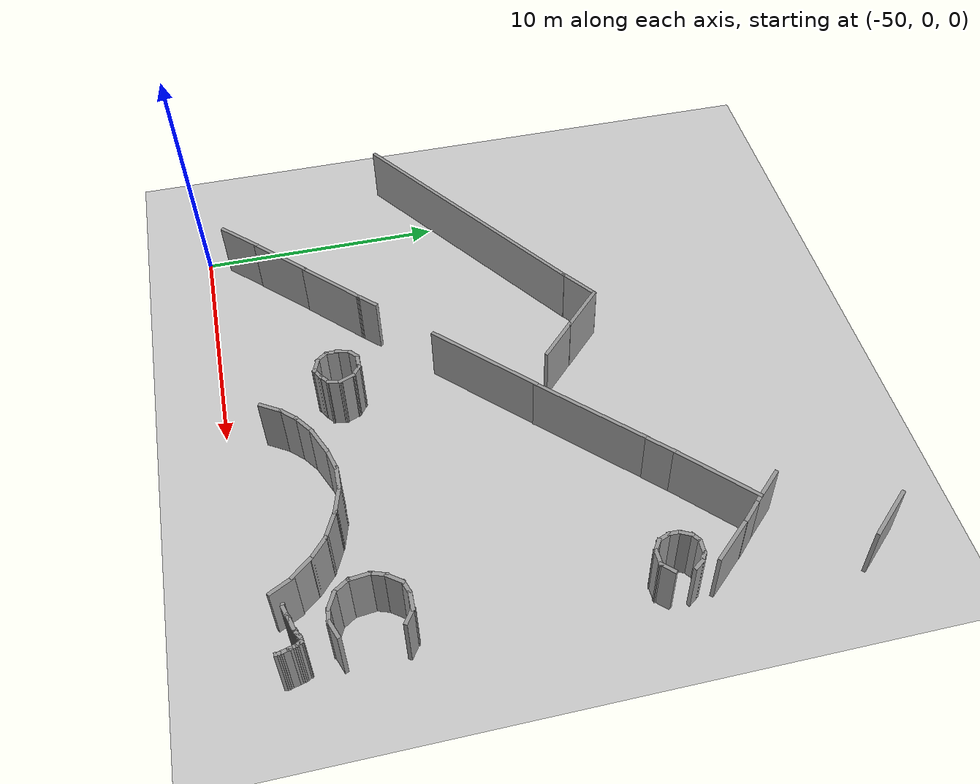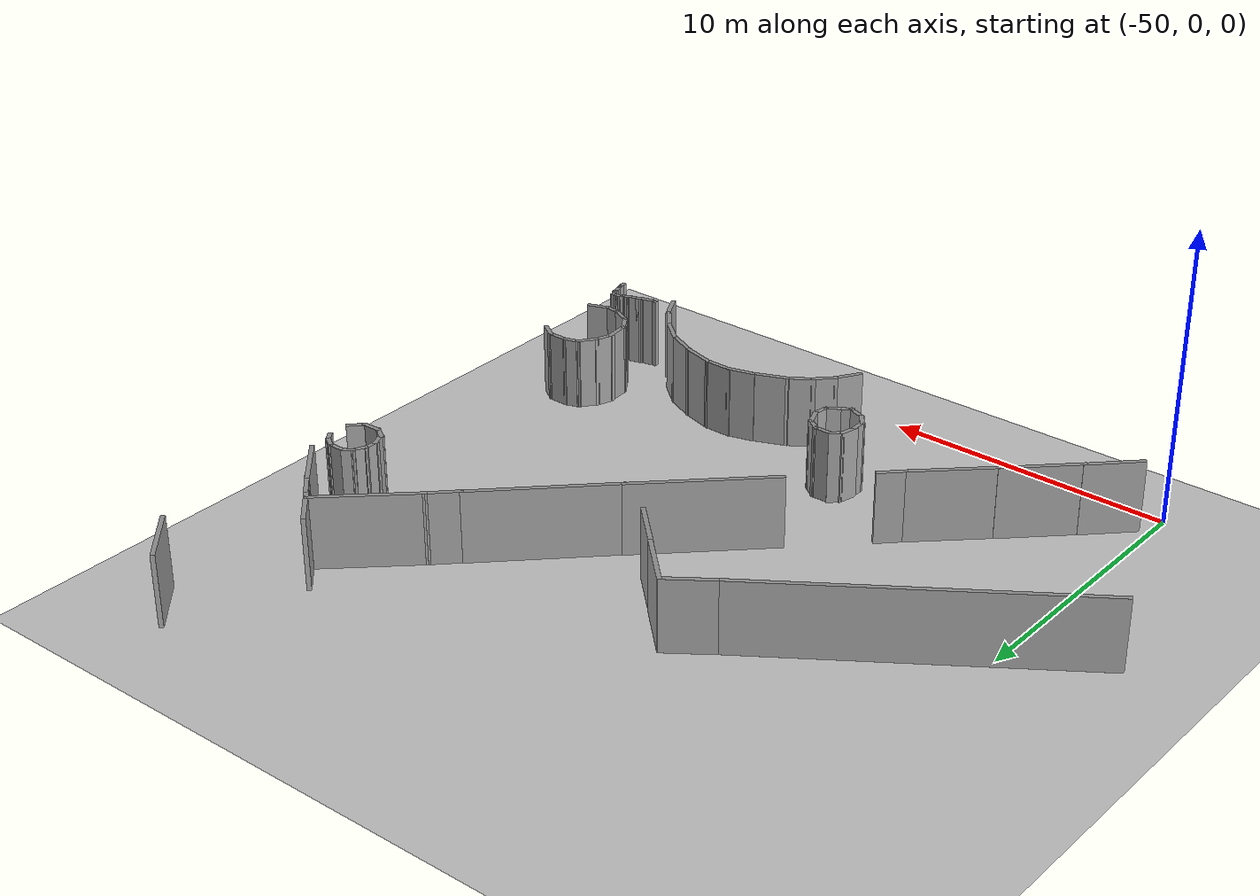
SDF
<sdf version="1.6">
 <world name="default">
  <model name="ground_plane">
   <static>1</static>
   <link name="link">
    <collision name="collision">
     <geometry><plane><normal>0 0 1</normal><size>100 100</size></plane></geometry>
     <surface><friction><ode><mu>100</mu><mu2>50</mu2></ode></friction></surface>
    </collision>
    <visual name="visual">
     <cast_shadows>0</cast_shadows>
     <geometry><plane><normal>0 0 1</normal><size>100 100</size></plane></geometry>
     <material>
      <script><uri>file://media/materials/scripts/gazebo.material</uri><name>Gazebo/Grey</name></script>
     </material>
    </visual>
   </link>
  </model>
  <model name="scene">
   <pose>1.8013 -1.70593 0 0 -0 0</pose>
   <link name="Wall_1058">
    <collision name="Wall_1058_Collision">
     <geometry><box><size>0.609681 0.15 2.5</size></box></geometry>
     <pose>0 0 1.25 0 -0 0</pose>
    </collision>
    <visual name="Wall_1058_Visual">
     <pose>0 0 1.25 0 -0 0</pose>
     <geometry><box><size>0.609681 0.15 2.5</size></box></geometry>
     <material>
      <script><uri>file://media/materials/scripts/gazebo.material</uri><name>Gazebo/Grey</name></script>
      <ambient>1 1 1 1</ambient>
     </material>
    </visual>
    <pose>-31.3527 17.7342 0 0 0 -0.02377</pose>
   </link>
   <link name="Wall_1059">
    <collision name="Wall_1059_Collision">
     <geometry><box><size>0.499764 0.15 2.5</size></box></geometry>
     <pose>0 0 1.25 0 -0 0</pose>
    </collision>
    <visual name="Wall_1059_Visual">
     <pose>0 0 1.25 0 -0 0</pose>
     <geometry><box><size>0.499764 0.15 2.5</size></box></geometry>
     <material>
      <script><uri>file://media/materials/scripts/gazebo.material</uri><name>Gazebo/Grey</name></script>
      <ambient>1 1 1 1</ambient>
     </material>
    </visual>
    <pose>-30.9759 17.6453 0 0 0 -0.570304</pose>
   </link>
   <link name="Wall_1060">
    <collision name="Wall_1060_Collision">
     <geometry><box><size>0.513496 0.15 2.5</size></box></geometry>
     <pose>0 0 1.25 0 -0 0</pose>
    </collision>
    <visual name="Wall_1060_Visual">
     <pose>0 0 1.25 0 -0 0</pose>
     <geometry><box><size>0.513496 0.15 2.5</size></box></geometry>
     <material>
      <script><uri>file://media/materials/scripts/gazebo.material</uri><name>Gazebo/Grey</name></script>
      <ambient>1 1 1 1</ambient>
     </material>
    </visual>
    <pose>-30.7109 17.4148 0 0 0 -0.942184</pose>
   </link>
   <link name="Wall_1063">
    <collision name="Wall_1063_Collision">
     <geometry><box><size>0.690792 0.15 2.5</size></box></geometry>
     <pose>0 0 1.25 0 -0 0</pose>
    </collision>
    <visual name="Wall_1063_Visual">
     <pose>0 0 1.25 0 -0 0</pose>
     <geometry><box><size>0.690792 0.15 2.5</size></box></geometry>
     <material>
      <script><uri>file://media/materials/scripts/gazebo.material</uri><name>Gazebo/Grey</name></script>
      <ambient>1 1 1 1</ambient>
     </material>
    </visual>
    <pose>-30.8373 16.323 0 0 0 -2.35098</pose>
   </link>
   <link name="Wall_1064">
    <collision name="Wall_1064_Collision">
     <geometry><box><size>0.706181 0.15 2.5</size></box></geometry>
     <pose>0 0 1.25 0 -0 0</pose>
    </collision>
    <visual name="Wall_1064_Visual">
     <pose>0 0 1.25 0 -0 0</pose>
     <geometry><box><size>0.706181 0.15 2.5</size></box></geometry>
     <material>
      <script><uri>file://media/materials/scripts/gazebo.material</uri><name>Gazebo/Grey</name></script>
      <ambient>1 1 1 1</ambient>
     </material>
    </visual>
    <pose>-31.2946 16.1238 0 0 0 -3.11637</pose>
   </link>
   <link name="Wall_1065">
    <collision name="Wall_1065_Collision">
     <geometry><box><size>0.614202 0.15 2.5</size></box></geometry>
     <pose>0 0 1.25 0 -0 0</pose>
    </collision>
    <visual name="Wall_1065_Visual">
     <pose>0 0 1.25 0 -0 0</pose>
     <geometry><box><size>0.614202 0.15 2.5</size></box></geometry>
     <material>
      <script><uri>file://media/materials/scripts/gazebo.material</uri><name>Gazebo/Grey</name></script>
      <ambient>1 1 1 1</ambient>
     </material>
    </visual>
    <pose>-31.7678 16.2314 0 0 -0 2.57012</pose>
   </link>
   <link name="Wall_1066">
    <collision name="Wall_1066_Collision">
     <geometry><box><size>0.590807 0.15 2.5</size></box></geometry>
     <pose>0 0 1.25 0 -0 0</pose>
    </collision>
    <visual name="Wall_1066_Visual">
     <pose>0 0 1.25 0 -0 0</pose>
     <geometry><box><size>0.590807 0.15 2.5</size></box></geometry>
     <material>
      <script><uri>file://media/materials/scripts/gazebo.material</uri><name>Gazebo/Grey</name></script>
      <ambient>1 1 1 1</ambient>
     </material>
    </visual>
    <pose>-32.0354 16.561 0 0 -0 1.95851</pose>
   </link>
   <link name="Wall_1067">
    <collision name="Wall_1067_Collision">
     <geometry><box><size>0.570884 0.15 2.5</size></box></geometry>
     <pose>0 0 1.25 0 -0 0</pose>
    </collision>
    <visual name="Wall_1067_Visual">
     <pose>0 0 1.25 0 -0 0</pose>
     <geometry><box><size>0.570884 0.15 2.5</size></box></geometry>
     <material>
      <script><uri>file://media/materials/scripts/gazebo.material</uri><name>Gazebo/Grey</name></script>
      <ambient>1 1 1 1</ambient>
     </material>
    </visual>
    <pose>-32.1184 16.9748 0 0 -0 1.51706</pose>
   </link>
   <link name="Wall_1068">
    <collision name="Wall_1068_Collision">
     <geometry><box><size>0.555832 0.15 2.5</size></box></geometry>
     <pose>0 0 1.25 0 -0 0</pose>
    </collision>
    <visual name="Wall_1068_Visual">
     <pose>0 0 1.25 0 -0 0</pose>
     <geometry><box><size>0.555832 0.15 2.5</size></box></geometry>
     <material>
      <script><uri>file://media/materials/scripts/gazebo.material</uri><name>Gazebo/Grey</name></script>
      <ambient>1 1 1 1</ambient>
     </material>
    </visual>
    <pose>-32.0034 17.3651 0 0 -0 1.09587</pose>
   </link>
   <link name="Wall_1069">
    <collision name="Wall_1069_Collision">
     <geometry><box><size>0.458441 0.15 2.5</size></box></geometry>
     <pose>0 0 1.25 0 -0 0</pose>
    </collision>
    <visual name="Wall_1069_Visual">
     <pose>0 0 1.25 0 -0 0</pose>
     <geometry><box><size>0.458441 0.15 2.5</size></box></geometry>
     <material>
      <script><uri>file://media/materials/scripts/gazebo.material</uri><name>Gazebo/Grey</name></script>
      <ambient>1 1 1 1</ambient>
     </material>
    </visual>
    <pose>-31.7948 17.6333 0 0 -0 0.605884</pose>
   </link>
   <link name="Wall_1077">
    <collision name="Wall_1077_Collision">
     <geometry><box><size>0.805347 0.15 2.5</size></box></geometry>
     <pose>0 0 1.25 0 -0 0</pose>
    </collision>
    <visual name="Wall_1077_Visual">
     <pose>0 0 1.25 0 -0 0</pose>
     <geometry><box><size>0.805347 0.15 2.5</size></box></geometry>
     <material>
      <script><uri>file://media/materials/scripts/gazebo.material</uri><name>Gazebo/Grey</name></script>
      <ambient>1 1 1 1</ambient>
     </material>
    </visual>
    <pose>-31.6018 7.55392 0 0 0 -0.01084</pose>
   </link>
   <link name="Wall_1078">
    <collision name="Wall_1078_Collision">
     <geometry><box><size>0.713111 0.15 2.5</size></box></geometry>
     <pose>0 0 1.25 0 -0 0</pose>
    </collision>
    <visual name="Wall_1078_Visual">
     <pose>0 0 1.25 0 -0 0</pose>
     <geometry><box><size>0.713111 0.15 2.5</size></box></geometry>
     <material>
      <script><uri>file://media/materials/scripts/gazebo.material</uri><name>Gazebo/Grey</name></script>
      <ambient>1 1 1 1</ambient>
     </material>
    </visual>
    <pose>-31.055 7.39654 0 0 0 -0.577971</pose>
   </link>
   <link name="Wall_1083">
    <collision name="Wall_1083_Collision">
     <geometry><box><size>0.801608 0.15 2.5</size></box></geometry>
     <pose>0 0 1.25 0 -0 0</pose>
    </collision>
    <visual name="Wall_1083_Visual">
     <pose>0 0 1.25 0 -0 0</pose>
     <geometry><box><size>0.801608 0.15 2.5</size></box></geometry>
     <material>
      <script><uri>file://media/materials/scripts/gazebo.material</uri><name>Gazebo/Grey</name></script>
      <ambient>1 1 1 1</ambient>
     </material>
    </visual>
    <pose>-31.1489 4.87297 0 0 0 -2.78604</pose>
   </link>
   <link name="Wall_1084">
    <collision name="Wall_1084_Collision">
     <geometry><box><size>0.606156 0.15 2.5</size></box></geometry>
     <pose>0 0 1.25 0 -0 0</pose>
    </collision>
    <visual name="Wall_1084_Visual">
     <pose>0 0 1.25 0 -0 0</pose>
     <geometry><box><size>0.606156 0.15 2.5</size></box></geometry>
     <material>
      <script><uri>file://media/materials/scripts/gazebo.material</uri><name>Gazebo/Grey</name></script>
      <ambient>1 1 1 1</ambient>
     </material>
    </visual>
    <pose>-31.6812 4.76643 0 0 -0 3.03805</pose>
   </link>
   <link name="Wall_1085">
    <collision name="Wall_1085_Collision">
     <geometry><box><size>0.801251 0.15 2.5</size></box></geometry>
     <pose>0 0 1.25 0 -0 0</pose>
    </collision>
    <visual name="Wall_1085_Visual">
     <pose>0 0 1.25 0 -0 0</pose>
     <geometry><box><size>0.801251 0.15 2.5</size></box></geometry>
     <material>
      <script><uri>file://media/materials/scripts/gazebo.material</uri><name>Gazebo/Grey</name></script>
      <ambient>1 1 1 1</ambient>
     </material>
    </visual>
    <pose>-32.2179 4.93165 0 0 -0 2.69154</pose>
   </link>
   <link name="Wall_1087">
    <collision name="Wall_1087_Collision">
     <geometry><box><size>0.797768 0.15 2.5</size></box></geometry>
     <pose>0 0 1.25 0 -0 0</pose>
    </collision>
    <visual name="Wall_1087_Visual">
     <pose>0 0 1.25 0 -0 0</pose>
     <geometry><box><size>0.797768 0.15 2.5</size></box></geometry>
     <material>
      <script><uri>file://media/materials/scripts/gazebo.material</uri><name>Gazebo/Grey</name></script>
      <ambient>1 1 1 1</ambient>
     </material>
    </visual>
    <pose>-32.7109 5.34045 0 0 -0 2.17171</pose>
   </link>
   <link name="Wall_1088">
    <collision name="Wall_1088_Collision">
     <geometry><box><size>0.90593 0.15 2.5</size></box></geometry>
     <pose>0 0 1.25 0 -0 0</pose>
    </collision>
    <visual name="Wall_1088_Visual">
     <pose>0 0 1.25 0 -0 0</pose>
     <geometry><box><size>0.90593 0.15 2.5</size></box></geometry>
     <material>
      <script><uri>file://media/materials/scripts/gazebo.material</uri><name>Gazebo/Grey</name></script>
      <ambient>1 1 1 1</ambient>
     </material>
    </visual>
    <pose>-32.9191 5.98325 0 0 -0 1.68141</pose>
   </link>
   <link name="Wall_1089">
    <collision name="Wall_1089_Collision">
     <geometry><box><size>0.738022 0.15 2.5</size></box></geometry>
     <pose>0 0 1.25 0 -0 0</pose>
    </collision>
    <visual name="Wall_1089_Visual">
     <pose>0 0 1.25 0 -0 0</pose>
     <geometry><box><size>0.738022 0.15 2.5</size></box></geometry>
     <material>
      <script><uri>file://media/materials/scripts/gazebo.material</uri><name>Gazebo/Grey</name></script>
      <ambient>1 1 1 1</ambient>
     </material>
    </visual>
    <pose>-32.8788 6.61916 0 0 -0 1.22841</pose>
   </link>
   <link name="Wall_1090">
    <collision name="Wall_1090_Collision">
     <geometry><box><size>0.783098 0.15 2.5</size></box></geometry>
     <pose>0 0 1.25 0 -0 0</pose>
    </collision>
    <visual name="Wall_1090_Visual">
     <pose>0 0 1.25 0 -0 0</pose>
     <geometry><box><size>0.783098 0.15 2.5</size></box></geometry>
     <material>
      <script><uri>file://media/materials/scripts/gazebo.material</uri><name>Gazebo/Grey</name></script>
      <ambient>1 1 1 1</ambient>
     </material>
    </visual>
    <pose>-32.5711 7.14756 0 0 -0 0.917982</pose>
   </link>
   <link name="Wall_1091">
    <collision name="Wall_1091_Collision">
     <geometry><box><size>0.618912 0.15 2.5</size></box></geometry>
     <pose>0 0 1.25 0 -0 0</pose>
    </collision>
    <visual name="Wall_1091_Visual">
     <pose>0 0 1.25 0 -0 0</pose>
     <geometry><box><size>0.618912 0.15 2.5</size></box></geometry>
     <material>
      <script><uri>file://media/materials/scripts/gazebo.material</uri><name>Gazebo/Grey</name></script>
      <ambient>1 1 1 1</ambient>
     </material>
    </visual>
    <pose>-32.1727 7.47174 0 0 -0 0.315378</pose>
   </link>
   <link name="Wall_1098">
    <collision name="Wall_1098_Collision">
     <geometry><box><size>0.633124 0.15 2.5</size></box></geometry>
     <pose>0 0 1.25 0 -0 0</pose>
    </collision>
    <visual name="Wall_1098_Visual">
     <pose>0 0 1.25 0 -0 0</pose>
     <geometry><box><size>0.633124 0.15 2.5</size></box></geometry>
     <material>
      <script><uri>file://media/materials/scripts/gazebo.material</uri><name>Gazebo/Grey</name></script>
      <ambient>1 1 1 1</ambient>
     </material>
    </visual>
    <pose>-42.4739 7.30702 0 0 -0 0</pose>
   </link>
   <link name="Wall_1099">
    <collision name="Wall_1099_Collision">
     <geometry><box><size>0.642402 0.15 2.5</size></box></geometry>
     <pose>0 0 1.25 0 -0 0</pose>
    </collision>
    <visual name="Wall_1099_Visual">
     <pose>0 0 1.25 0 -0 0</pose>
     <geometry><box><size>0.642402 0.15 2.5</size></box></geometry>
     <material>
      <script><uri>file://media/materials/scripts/gazebo.material</uri><name>Gazebo/Grey</name></script>
      <ambient>1 1 1 1</ambient>
     </material>
    </visual>
    <pose>-42.0476 7.16537 0 0 0 -0.613032</pose>
   </link>
   <link name="Wall_1100">
    <collision name="Wall_1100_Collision">
     <geometry><box><size>0.725699 0.15 2.5</size></box></geometry>
     <pose>0 0 1.25 0 -0 0</pose>
    </collision>
    <visual name="Wall_1100_Visual">
     <pose>0 0 1.25 0 -0 0</pose>
     <geometry><box><size>0.725699 0.15 2.5</size></box></geometry>
     <material>
      <script><uri>file://media/materials/scripts/gazebo.material</uri><name>Gazebo/Grey</name></script>
      <ambient>1 1 1 1</ambient>
     </material>
    </visual>
    <pose>-41.7544 6.75711 0 0 0 -1.18421</pose>
   </link>
   <link name="Wall_1101">
    <collision name="Wall_1101_Collision">
     <geometry><box><size>0.623398 0.15 2.5</size></box></geometry>
     <pose>0 0 1.25 0 -0 0</pose>
    </collision>
    <visual name="Wall_1101_Visual">
     <pose>0 0 1.25 0 -0 0</pose>
     <geometry><box><size>0.623398 0.15 2.5</size></box></geometry>
     <material>
      <script><uri>file://media/materials/scripts/gazebo.material</uri><name>Gazebo/Grey</name></script>
      <ambient>1 1 1 1</ambient>
     </material>
    </visual>
    <pose>-41.6876 6.27421 0 0 0 -1.74807</pose>
   </link>
   <link name="Wall_1102">
    <collision name="Wall_1102_Collision">
     <geometry><box><size>0.568201 0.15 2.5</size></box></geometry>
     <pose>0 0 1.25 0 -0 0</pose>
    </collision>
    <visual name="Wall_1102_Visual">
     <pose>0 0 1.25 0 -0 0</pose>
     <geometry><box><size>0.568201 0.15 2.5</size></box></geometry>
     <material>
      <script><uri>file://media/materials/scripts/gazebo.material</uri><name>Gazebo/Grey</name></script>
      <ambient>1 1 1 1</ambient>
     </material>
    </visual>
    <pose>-41.9128 5.91499 0 0 0 -2.49345</pose>
   </link>
   <link name="Wall_1103">
    <collision name="Wall_1103_Collision">
     <geometry><box><size>0.566639 0.15 2.5</size></box></geometry>
     <pose>0 0 1.25 0 -0 0</pose>
    </collision>
    <visual name="Wall_1103_Visual">
     <pose>0 0 1.25 0 -0 0</pose>
     <geometry><box><size>0.566639 0.15 2.5</size></box></geometry>
     <material>
      <script><uri>file://media/materials/scripts/gazebo.material</uri><name>Gazebo/Grey</name></script>
      <ambient>1 1 1 1</ambient>
     </material>
    </visual>
    <pose>-42.244 5.68606 0 0 0 -2.62612</pose>
   </link>
   <link name="Wall_1104">
    <collision name="Wall_1104_Collision">
     <geometry><box><size>0.682076 0.15 2.5</size></box></geometry>
     <pose>0 0 1.25 0 -0 0</pose>
    </collision>
    <visual name="Wall_1104_Visual">
     <pose>0 0 1.25 0 -0 0</pose>
     <geometry><box><size>0.682076 0.15 2.5</size></box></geometry>
     <material>
      <script><uri>file://media/materials/scripts/gazebo.material</uri><name>Gazebo/Grey</name></script>
      <ambient>1 1 1 1</ambient>
     </material>
    </visual>
    <pose>-42.6583 5.6752 0 0 -0 2.78916</pose>
   </link>
   <link name="Wall_1105">
    <collision name="Wall_1105_Collision">
     <geometry><box><size>0.615027 0.15 2.5</size></box></geometry>
     <pose>0 0 1.25 0 -0 0</pose>
    </collision>
    <visual name="Wall_1105_Visual">
     <pose>0 0 1.25 0 -0 0</pose>
     <geometry><box><size>0.615027 0.15 2.5</size></box></geometry>
     <material>
      <script><uri>file://media/materials/scripts/gazebo.material</uri><name>Gazebo/Grey</name></script>
      <ambient>1 1 1 1</ambient>
     </material>
    </visual>
    <pose>-43.0676 5.95043 0 0 -0 2.23283</pose>
   </link>
   <link name="Wall_1106">
    <collision name="Wall_1106_Collision">
     <geometry><box><size>0.55274 0.15 2.5</size></box></geometry>
     <pose>0 0 1.25 0 -0 0</pose>
    </collision>
    <visual name="Wall_1106_Visual">
     <pose>0 0 1.25 0 -0 0</pose>
     <geometry><box><size>0.55274 0.15 2.5</size></box></geometry>
     <material>
      <script><uri>file://media/materials/scripts/gazebo.material</uri><name>Gazebo/Grey</name></script>
      <ambient>1 1 1 1</ambient>
     </material>
    </visual>
    <pose>-43.2102 6.35189 0 0 -0 1.56946</pose>
   </link>
   <link name="Wall_1107">
    <collision name="Wall_1107_Collision">
     <geometry><box><size>0.678637 0.15 2.5</size></box></geometry>
     <pose>0 0 1.25 0 -0 0</pose>
    </collision>
    <visual name="Wall_1107_Visual">
     <pose>0 0 1.25 0 -0 0</pose>
     <geometry><box><size>0.678637 0.15 2.5</size></box></geometry>
     <material>
      <script><uri>file://media/materials/scripts/gazebo.material</uri><name>Gazebo/Grey</name></script>
      <ambient>1 1 1 1</ambient>
     </material>
    </visual>
    <pose>-43.1624 6.80964 0 0 -0 1.32516</pose>
   </link>
   <link name="Wall_1108">
    <collision name="Wall_1108_Collision">
     <geometry><box><size>0.504266 0.15 2.5</size></box></geometry>
     <pose>0 0 1.25 0 -0 0</pose>
    </collision>
    <visual name="Wall_1108_Visual">
     <pose>0 0 1.25 0 -0 0</pose>
     <geometry><box><size>0.504266 0.15 2.5</size></box></geometry>
     <material>
      <script><uri>file://media/materials/scripts/gazebo.material</uri><name>Gazebo/Grey</name></script>
      <ambient>1 1 1 1</ambient>
     </material>
    </visual>
    <pose>-42.9478 7.18236 0 0 -0 0.716544</pose>
   </link>
   <link name="Wall_1120">
    <collision name="Wall_1120_Collision">
     <geometry><box><size>1.0176 0.15 2.5</size></box></geometry>
     <pose>0 0 1.25 0 -0 0</pose>
    </collision>
    <visual name="Wall_1120_Visual">
     <pose>0 0 1.25 0 -0 0</pose>
     <geometry><box><size>1.0176 0.15 2.5</size></box></geometry>
     <material>
      <script><uri>file://media/materials/scripts/gazebo.material</uri><name>Gazebo/Grey</name></script>
      <ambient>1 1 1 1</ambient>
     </material>
    </visual>
    <pose>-40.9722 3.73437 0 0 -0 1.00241</pose>
   </link>
   <link name="Wall_1121">
    <collision name="Wall_1121_Collision">
     <geometry><box><size>0.890339 0.15 2.5</size></box></geometry>
     <pose>0 0 1.25 0 -0 0</pose>
    </collision>
    <visual name="Wall_1121_Visual">
     <pose>0 0 1.25 0 -0 0</pose>
     <geometry><box><size>0.890339 0.15 2.5</size></box></geometry>
     <material>
      <script><uri>file://media/materials/scripts/gazebo.material</uri><name>Gazebo/Grey</name></script>
      <ambient>1 1 1 1</ambient>
     </material>
    </visual>
    <pose>-40.4766 4.37608 0 0 -0 0.784193</pose>
   </link>
   <link name="Wall_1122">
    <collision name="Wall_1122_Collision">
     <geometry><box><size>0.992393 0.15 2.5</size></box></geometry>
     <pose>0 0 1.25 0 -0 0</pose>
    </collision>
    <visual name="Wall_1122_Visual">
     <pose>0 0 1.25 0 -0 0</pose>
     <geometry><box><size>0.992393 0.15 2.5</size></box></geometry>
     <material>
      <script><uri>file://media/materials/scripts/gazebo.material</uri><name>Gazebo/Grey</name></script>
      <ambient>1 1 1 1</ambient>
     </material>
    </visual>
    <pose>-39.8848 4.87994 0 0 -0 0.613279</pose>
   </link>
   <link name="Wall_1123">
    <collision name="Wall_1123_Collision">
     <geometry><box><size>1.29429 0.15 2.5</size></box></geometry>
     <pose>0 0 1.25 0 -0 0</pose>
    </collision>
    <visual name="Wall_1123_Visual">
     <pose>0 0 1.25 0 -0 0</pose>
     <geometry><box><size>1.29429 0.15 2.5</size></box></geometry>
     <material>
      <script><uri>file://media/materials/scripts/gazebo.material</uri><name>Gazebo/Grey</name></script>
      <ambient>1 1 1 1</ambient>
     </material>
    </visual>
    <pose>-38.9977 5.34275 0 0 -0 0.395433</pose>
   </link>
   <link name="Wall_1124">
    <collision name="Wall_1124_Collision">
     <geometry><box><size>1.00518 0.15 2.5</size></box></geometry>
     <pose>0 0 1.25 0 -0 0</pose>
    </collision>
    <visual name="Wall_1124_Visual">
     <pose>0 0 1.25 0 -0 0</pose>
     <geometry><box><size>1.00518 0.15 2.5</size></box></geometry>
     <material>
      <script><uri>file://media/materials/scripts/gazebo.material</uri><name>Gazebo/Grey</name></script>
      <ambient>1 1 1 1</ambient>
     </material>
    </visual>
    <pose>-38.041 5.6848 0 0 -0 0.252861</pose>
   </link>
   <link name="Wall_1125">
    <collision name="Wall_1125_Collision">
     <geometry><box><size>1.04483 0.15 2.5</size></box></geometry>
     <pose>0 0 1.25 0 -0 0</pose>
    </collision>
    <visual name="Wall_1125_Visual">
     <pose>0 0 1.25 0 -0 0</pose>
     <geometry><box><size>1.04483 0.15 2.5</size></box></geometry>
     <material>
      <script><uri>file://media/materials/scripts/gazebo.material</uri><name>Gazebo/Grey</name></script>
      <ambient>1 1 1 1</ambient>
     </material>
    </visual>
    <pose>-37.1797 5.79962 0 0 0 -0.015285</pose>
   </link>
   <link name="Wall_1126">
    <collision name="Wall_1126_Collision">
     <geometry><box><size>1.19968 0.15 2.5</size></box></geometry>
     <pose>0 0 1.25 0 -0 0</pose>
    </collision>
    <visual name="Wall_1126_Visual">
     <pose>0 0 1.25 0 -0 0</pose>
     <geometry><box><size>1.19968 0.15 2.5</size></box></geometry>
     <material>
      <script><uri>file://media/materials/scripts/gazebo.material</uri><name>Gazebo/Grey</name></script>
      <ambient>1 1 1 1</ambient>
     </material>
    </visual>
    <pose>-36.2116 5.65379 0 0 0 -0.268032</pose>
   </link>
   <link name="Wall_1127">
    <collision name="Wall_1127_Collision">
     <geometry><box><size>1.23128 0.15 2.5</size></box></geometry>
     <pose>0 0 1.25 0 -0 0</pose>
    </collision>
    <visual name="Wall_1127_Visual">
     <pose>0 0 1.25 0 -0 0</pose>
     <geometry><box><size>1.23128 0.15 2.5</size></box></geometry>
     <material>
      <script><uri>file://media/materials/scripts/gazebo.material</uri><name>Gazebo/Grey</name></script>
      <ambient>1 1 1 1</ambient>
     </material>
    </visual>
    <pose>-35.2285 5.28999 0 0 0 -0.428841</pose>
   </link>
   <link name="Wall_1128">
    <collision name="Wall_1128_Collision">
     <geometry><box><size>1.10744 0.15 2.5</size></box></geometry>
     <pose>0 0 1.25 0 -0 0</pose>
    </collision>
    <visual name="Wall_1128_Visual">
     <pose>0 0 1.25 0 -0 0</pose>
     <geometry><box><size>1.10744 0.15 2.5</size></box></geometry>
     <material>
      <script><uri>file://media/materials/scripts/gazebo.material</uri><name>Gazebo/Grey</name></script>
      <ambient>1 1 1 1</ambient>
     </material>
    </visual>
    <pose>-34.3555 4.75732 0 0 0 -0.698531</pose>
   </link>
   <link name="Wall_1129">
    <collision name="Wall_1129_Collision">
     <geometry><box><size>1.05718 0.15 2.5</size></box></geometry>
     <pose>0 0 1.25 0 -0 0</pose>
    </collision>
    <visual name="Wall_1129_Visual">
     <pose>0 0 1.25 0 -0 0</pose>
     <geometry><box><size>1.05718 0.15 2.5</size></box></geometry>
     <material>
      <script><uri>file://media/materials/scripts/gazebo.material</uri><name>Gazebo/Grey</name></script>
      <ambient>1 1 1 1</ambient>
     </material>
    </visual>
    <pose>-33.6956 4.08874 0 0 0 -0.867758</pose>
   </link>
   <link name="Wall_1130">
    <collision name="Wall_1130_Collision">
     <geometry><box><size>1.06219 0.15 2.5</size></box></geometry>
     <pose>0 0 1.25 0 -0 0</pose>
    </collision>
    <visual name="Wall_1130_Visual">
     <pose>0 0 1.25 0 -0 0</pose>
     <geometry><box><size>1.06219 0.15 2.5</size></box></geometry>
     <material>
      <script><uri>file://media/materials/scripts/gazebo.material</uri><name>Gazebo/Grey</name></script>
      <ambient>1 1 1 1</ambient>
     </material>
    </visual>
    <pose>-33.1601 3.33936 0 0 0 -1.08509</pose>
   </link>
   <link name="Wall_503">
    <collision name="Wall_503_Collision">
     <geometry><box><size>0.25 0.15 2.5</size></box></geometry>
     <pose>0 0 1.25 0 -0 0</pose>
    </collision>
    <visual name="Wall_503_Visual">
     <pose>0 0 1.25 0 -0 0</pose>
     <geometry><box><size>0.25 0.15 2.5</size></box></geometry>
     <material>
      <script><uri>file://media/materials/scripts/gazebo.material</uri><name>Gazebo/Grey</name></script>
      <ambient>1 1 1 1</ambient>
     </material>
    </visual>
    <pose>-32.3919 3.32516 0 0 -0 0</pose>
   </link>
   <link name="Wall_504">
    <collision name="Wall_504_Collision">
     <geometry><box><size>0.5 0.15 2.5</size></box></geometry>
     <pose>0 0 1.25 0 -0 0</pose>
    </collision>
    <visual name="Wall_504_Visual">
     <pose>0 0 1.25 0 -0 0</pose>
     <geometry><box><size>0.5 0.15 2.5</size></box></geometry>
     <material>
      <script><uri>file://media/materials/scripts/gazebo.material</uri><name>Gazebo/Grey</name></script>
      <ambient>1 1 1 1</ambient>
     </material>
    </visual>
    <pose>-32.1728 3.37045 0 0 -0 0.261799</pose>
   </link>
   <link name="Wall_505">
    <collision name="Wall_505_Collision">
     <geometry><box><size>0.25 0.15 2.5</size></box></geometry>
     <pose>0 0 1.25 0 -0 0</pose>
    </collision>
    <visual name="Wall_505_Visual">
     <pose>0 0 1.25 0 -0 0</pose>
     <geometry><box><size>0.25 0.15 2.5</size></box></geometry>
     <material>
      <script><uri>file://media/materials/scripts/gazebo.material</uri><name>Gazebo/Grey</name></script>
      <ambient>1 1 1 1</ambient>
     </material>
    </visual>
    <pose>-31.9605 3.44074 0 0 -0 0.523599</pose>
   </link>
   <link name="Wall_506">
    <collision name="Wall_506_Collision">
     <geometry><box><size>0.25 0.15 2.5</size></box></geometry>
     <pose>0 0 1.25 0 -0 0</pose>
    </collision>
    <visual name="Wall_506_Visual">
     <pose>0 0 1.25 0 -0 0</pose>
     <geometry><box><size>0.25 0.15 2.5</size></box></geometry>
     <material>
      <script><uri>file://media/materials/scripts/gazebo.material</uri><name>Gazebo/Grey</name></script>
      <ambient>1 1 1 1</ambient>
     </material>
    </visual>
    <pose>-31.8689 3.47869 0 0 -0 0.261799</pose>
   </link>
   <link name="Wall_507">
    <collision name="Wall_507_Collision">
     <geometry><box><size>0.5 0.15 2.5</size></box></geometry>
     <pose>0 0 1.25 0 -0 0</pose>
    </collision>
    <visual name="Wall_507_Visual">
     <pose>0 0 1.25 0 -0 0</pose>
     <geometry><box><size>0.5 0.15 2.5</size></box></geometry>
     <material>
      <script><uri>file://media/materials/scripts/gazebo.material</uri><name>Gazebo/Grey</name></script>
      <ambient>1 1 1 1</ambient>
     </material>
    </visual>
    <pose>-31.6516 3.53692 0 0 -0 0.261799</pose>
   </link>
   <link name="Wall_508">
    <collision name="Wall_508_Collision">
     <geometry><box><size>0.25 0.15 2.5</size></box></geometry>
     <pose>0 0 1.25 0 -0 0</pose>
    </collision>
    <visual name="Wall_508_Visual">
     <pose>0 0 1.25 0 -0 0</pose>
     <geometry><box><size>0.25 0.15 2.5</size></box></geometry>
     <material>
      <script><uri>file://media/materials/scripts/gazebo.material</uri><name>Gazebo/Grey</name></script>
      <ambient>1 1 1 1</ambient>
     </material>
    </visual>
    <pose>-31.4392 3.60721 0 0 -0 0.523599</pose>
   </link>
   <link name="Wall_509">
    <collision name="Wall_509_Collision">
     <geometry><box><size>0.25 0.15 2.5</size></box></geometry>
     <pose>0 0 1.25 0 -0 0</pose>
    </collision>
    <visual name="Wall_509_Visual">
     <pose>0 0 1.25 0 -0 0</pose>
     <geometry><box><size>0.25 0.15 2.5</size></box></geometry>
     <material>
      <script><uri>file://media/materials/scripts/gazebo.material</uri><name>Gazebo/Grey</name></script>
      <ambient>1 1 1 1</ambient>
     </material>
    </visual>
    <pose>-31.3476 3.64515 0 0 -0 0.261799</pose>
   </link>
   <link name="Wall_510">
    <collision name="Wall_510_Collision">
     <geometry><box><size>0.25 0.15 2.5</size></box></geometry>
     <pose>0 0 1.25 0 -0 0</pose>
    </collision>
    <visual name="Wall_510_Visual">
     <pose>0 0 1.25 0 -0 0</pose>
     <geometry><box><size>0.25 0.15 2.5</size></box></geometry>
     <material>
      <script><uri>file://media/materials/scripts/gazebo.material</uri><name>Gazebo/Grey</name></script>
      <ambient>1 1 1 1</ambient>
     </material>
    </visual>
    <pose>-31.256 3.68309 0 0 -0 0.523599</pose>
   </link>
   <link name="Wall_511">
    <collision name="Wall_511_Collision">
     <geometry><box><size>0.25 0.15 2.5</size></box></geometry>
     <pose>0 0 1.25 0 -0 0</pose>
    </collision>
    <visual name="Wall_511_Visual">
     <pose>0 0 1.25 0 -0 0</pose>
     <geometry><box><size>0.25 0.15 2.5</size></box></geometry>
     <material>
      <script><uri>file://media/materials/scripts/gazebo.material</uri><name>Gazebo/Grey</name></script>
      <ambient>1 1 1 1</ambient>
     </material>
    </visual>
    <pose>-31.1694 3.7331 0 0 -0 0.523599</pose>
   </link>
   <link name="Wall_512">
    <collision name="Wall_512_Collision">
     <geometry><box><size>0.25 0.15 2.5</size></box></geometry>
     <pose>0 0 1.25 0 -0 0</pose>
    </collision>
    <visual name="Wall_512_Visual">
     <pose>0 0 1.25 0 -0 0</pose>
     <geometry><box><size>0.25 0.15 2.5</size></box></geometry>
     <material>
      <script><uri>file://media/materials/scripts/gazebo.material</uri><name>Gazebo/Grey</name></script>
      <ambient>1 1 1 1</ambient>
     </material>
    </visual>
    <pose>-31.0778 3.77104 0 0 -0 0.261799</pose>
   </link>
   <link name="Wall_513">
    <collision name="Wall_513_Collision">
     <geometry><box><size>0.25 0.15 2.5</size></box></geometry>
     <pose>0 0 1.25 0 -0 0</pose>
    </collision>
    <visual name="Wall_513_Visual">
     <pose>0 0 1.25 0 -0 0</pose>
     <geometry><box><size>0.25 0.15 2.5</size></box></geometry>
     <material>
      <script><uri>file://media/materials/scripts/gazebo.material</uri><name>Gazebo/Grey</name></script>
      <ambient>1 1 1 1</ambient>
     </material>
    </visual>
    <pose>-30.9795 3.78398 0 0 -0 0</pose>
   </link>
   <link name="Wall_514">
    <collision name="Wall_514_Collision">
     <geometry><box><size>0.25 0.15 2.5</size></box></geometry>
     <pose>0 0 1.25 0 -0 0</pose>
    </collision>
    <visual name="Wall_514_Visual">
     <pose>0 0 1.25 0 -0 0</pose>
     <geometry><box><size>0.25 0.15 2.5</size></box></geometry>
     <material>
      <script><uri>file://media/materials/scripts/gazebo.material</uri><name>Gazebo/Grey</name></script>
      <ambient>1 1 1 1</ambient>
     </material>
    </visual>
    <pose>-30.9045 3.74068 0 0 0 -1.0472</pose>
   </link>
   <link name="Wall_515">
    <collision name="Wall_515_Collision">
     <geometry><box><size>0.25 0.15 2.5</size></box></geometry>
     <pose>0 0 1.25 0 -0 0</pose>
    </collision>
    <visual name="Wall_515_Visual">
     <pose>0 0 1.25 0 -0 0</pose>
     <geometry><box><size>0.25 0.15 2.5</size></box></geometry>
     <material>
      <script><uri>file://media/materials/scripts/gazebo.material</uri><name>Gazebo/Grey</name></script>
      <ambient>1 1 1 1</ambient>
     </material>
    </visual>
    <pose>-30.8545 3.65407 0 0 0 -1.0472</pose>
   </link>
   <link name="Wall_516">
    <collision name="Wall_516_Collision">
     <geometry><box><size>0.25 0.15 2.5</size></box></geometry>
     <pose>0 0 1.25 0 -0 0</pose>
    </collision>
    <visual name="Wall_516_Visual">
     <pose>0 0 1.25 0 -0 0</pose>
     <geometry><box><size>0.25 0.15 2.5</size></box></geometry>
     <material>
      <script><uri>file://media/materials/scripts/gazebo.material</uri><name>Gazebo/Grey</name></script>
      <ambient>1 1 1 1</ambient>
     </material>
    </visual>
    <pose>-30.8166 3.56248 0 0 0 -1.309</pose>
   </link>
   <link name="Wall_517">
    <collision name="Wall_517_Collision">
     <geometry><box><size>0.25 0.15 2.5</size></box></geometry>
     <pose>0 0 1.25 0 -0 0</pose>
    </collision>
    <visual name="Wall_517_Visual">
     <pose>0 0 1.25 0 -0 0</pose>
     <geometry><box><size>0.25 0.15 2.5</size></box></geometry>
     <material>
      <script><uri>file://media/materials/scripts/gazebo.material</uri><name>Gazebo/Grey</name></script>
      <ambient>1 1 1 1</ambient>
     </material>
    </visual>
    <pose>-30.7907 3.46588 0 0 0 -1.309</pose>
   </link>
   <link name="Wall_518">
    <collision name="Wall_518_Collision">
     <geometry><box><size>0.25 0.15 2.5</size></box></geometry>
     <pose>0 0 1.25 0 -0 0</pose>
    </collision>
    <visual name="Wall_518_Visual">
     <pose>0 0 1.25 0 -0 0</pose>
     <geometry><box><size>0.25 0.15 2.5</size></box></geometry>
     <material>
      <script><uri>file://media/materials/scripts/gazebo.material</uri><name>Gazebo/Grey</name></script>
      <ambient>1 1 1 1</ambient>
     </material>
    </visual>
    <pose>-30.7648 3.36929 0 0 0 -1.309</pose>
   </link>
   <link name="Wall_519">
    <collision name="Wall_519_Collision">
     <geometry><box><size>0.25 0.15 2.5</size></box></geometry>
     <pose>0 0 1.25 0 -0 0</pose>
    </collision>
    <visual name="Wall_519_Visual">
     <pose>0 0 1.25 0 -0 0</pose>
     <geometry><box><size>0.25 0.15 2.5</size></box></geometry>
     <material>
      <script><uri>file://media/materials/scripts/gazebo.material</uri><name>Gazebo/Grey</name></script>
      <ambient>1 1 1 1</ambient>
     </material>
    </visual>
    <pose>-30.7389 3.2727 0 0 0 -1.309</pose>
   </link>
   <link name="Wall_520">
    <collision name="Wall_520_Collision">
     <geometry><box><size>0.25 0.15 2.5</size></box></geometry>
     <pose>0 0 1.25 0 -0 0</pose>
    </collision>
    <visual name="Wall_520_Visual">
     <pose>0 0 1.25 0 -0 0</pose>
     <geometry><box><size>0.25 0.15 2.5</size></box></geometry>
     <material>
      <script><uri>file://media/materials/scripts/gazebo.material</uri><name>Gazebo/Grey</name></script>
      <ambient>1 1 1 1</ambient>
     </material>
    </visual>
    <pose>-30.7131 3.17611 0 0 0 -1.309</pose>
   </link>
   <link name="Wall_521">
    <collision name="Wall_521_Collision">
     <geometry><box><size>0.25 0.15 2.5</size></box></geometry>
     <pose>0 0 1.25 0 -0 0</pose>
    </collision>
    <visual name="Wall_521_Visual">
     <pose>0 0 1.25 0 -0 0</pose>
     <geometry><box><size>0.25 0.15 2.5</size></box></geometry>
     <material>
      <script><uri>file://media/materials/scripts/gazebo.material</uri><name>Gazebo/Grey</name></script>
      <ambient>1 1 1 1</ambient>
     </material>
    </visual>
    <pose>-30.6872 3.07951 0 0 0 -1.309</pose>
   </link>
   <link name="Wall_522">
    <collision name="Wall_522_Collision">
     <geometry><box><size>0.25 0.15 2.5</size></box></geometry>
     <pose>0 0 1.25 0 -0 0</pose>
    </collision>
    <visual name="Wall_522_Visual">
     <pose>0 0 1.25 0 -0 0</pose>
     <geometry><box><size>0.25 0.15 2.5</size></box></geometry>
     <material>
      <script><uri>file://media/materials/scripts/gazebo.material</uri><name>Gazebo/Grey</name></script>
      <ambient>1 1 1 1</ambient>
     </material>
    </visual>
    <pose>-30.6742 2.98122 0 0 0 -1.5708</pose>
   </link>
   <link name="Wall_531">
    <collision name="Wall_531_Collision">
     <geometry><box><size>2 0.15 2.5</size></box></geometry>
     <pose>0 0 1.25 0 -0 0</pose>
    </collision>
    <visual name="Wall_531_Visual">
     <pose>0 0 1.25 0 -0 0</pose>
     <geometry><box><size>2 0.15 2.5</size></box></geometry>
     <material>
      <script><uri>file://media/materials/scripts/gazebo.material</uri><name>Gazebo/Grey</name></script>
      <ambient>1 1 1 1</ambient>
     </material>
    </visual>
    <pose>-50.708 3.34281 0 0 -0 0.785398</pose>
   </link>
   <link name="Wall_532">
    <collision name="Wall_532_Collision">
     <geometry><box><size>2.79758 0.15 2.5</size></box></geometry>
     <pose>0 0 1.25 0 -0 0</pose>
    </collision>
    <visual name="Wall_532_Visual">
     <pose>0 0 1.25 0 -0 0</pose>
     <geometry><box><size>2.79758 0.15 2.5</size></box></geometry>
     <material>
      <script><uri>file://media/materials/scripts/gazebo.material</uri><name>Gazebo/Grey</name></script>
      <ambient>1 1 1 1</ambient>
     </material>
    </visual>
    <pose>-49.0848 4.91891 0 0 -0 0.770513</pose>
   </link>
   <link name="Wall_534">
    <collision name="Wall_534_Collision">
     <geometry><box><size>3.06148 0.15 2.5</size></box></geometry>
     <pose>0 0 1.25 0 -0 0</pose>
    </collision>
    <visual name="Wall_534_Visual">
     <pose>0 0 1.25 0 -0 0</pose>
     <geometry><box><size>3.06148 0.15 2.5</size></box></geometry>
     <material>
      <script><uri>file://media/materials/scripts/gazebo.material</uri><name>Gazebo/Grey</name></script>
      <ambient>1 1 1 1</ambient>
     </material>
    </visual>
    <pose>-47.058 6.84112 0 0 -0 0.75744</pose>
   </link>
   <link name="Wall_535">
    <collision name="Wall_535_Collision">
     <geometry><box><size>1 0.15 2.5</size></box></geometry>
     <pose>0 0 1.25 0 -0 0</pose>
    </collision>
    <visual name="Wall_535_Visual">
     <pose>0 0 1.25 0 -0 0</pose>
     <geometry><box><size>1 0.15 2.5</size></box></geometry>
     <material>
      <script><uri>file://media/materials/scripts/gazebo.material</uri><name>Gazebo/Grey</name></script>
      <ambient>1 1 1 1</ambient>
     </material>
    </visual>
    <pose>-45.6997 8.14183 0 0 -0 0.785398</pose>
   </link>
   <link name="Wall_537">
    <collision name="Wall_537_Collision">
     <geometry><box><size>11.7028 0.15 2.5</size></box></geometry>
     <pose>0 0 1.25 0 -0 0</pose>
    </collision>
    <visual name="Wall_537_Visual">
     <pose>0 0 1.25 0 -0 0</pose>
     <geometry><box><size>11.7028 0.15 2.5</size></box></geometry>
     <material>
      <script><uri>file://media/materials/scripts/gazebo.material</uri><name>Gazebo/Grey</name></script>
      <ambient>1 1 1 1</ambient>
     </material>
    </visual>
    <pose>-50.0657 13.12 0 0 -0 0.599518</pose>
   </link>
   <link name="Wall_538">
    <collision name="Wall_538_Collision">
     <geometry><box><size>1.76786 0.15 2.5</size></box></geometry>
     <pose>0 0 1.25 0 -0 0</pose>
    </collision>
    <visual name="Wall_538_Visual">
     <pose>0 0 1.25 0 -0 0</pose>
     <geometry><box><size>1.76786 0.15 2.5</size></box></geometry>
     <material>
      <script><uri>file://media/materials/scripts/gazebo.material</uri><name>Gazebo/Grey</name></script>
      <ambient>1 1 1 1</ambient>
     </material>
    </visual>
    <pose>-44.6546 16.852 0 0 -0 0.62392</pose>
   </link>
   <link name="Wall_539">
    <collision name="Wall_539_Collision">
     <geometry><box><size>2.17196 0.15 2.5</size></box></geometry>
     <pose>0 0 1.25 0 -0 0</pose>
    </collision>
    <visual name="Wall_539_Visual">
     <pose>0 0 1.25 0 -0 0</pose>
     <geometry><box><size>2.17196 0.15 2.5</size></box></geometry>
     <material>
      <script><uri>file://media/materials/scripts/gazebo.material</uri><name>Gazebo/Grey</name></script>
      <ambient>1 1 1 1</ambient>
     </material>
    </visual>
    <pose>-43.2553 16.6233 0 0 0 -0.76645</pose>
   </link>
   <link name="Wall_540">
    <collision name="Wall_540_Collision">
     <geometry><box><size>2.00046 0.15 2.5</size></box></geometry>
     <pose>0 0 1.25 0 -0 0</pose>
    </collision>
    <visual name="Wall_540_Visual">
     <pose>0 0 1.25 0 -0 0</pose>
     <geometry><box><size>2.00046 0.15 2.5</size></box></geometry>
     <material>
      <script><uri>file://media/materials/scripts/gazebo.material</uri><name>Gazebo/Grey</name></script>
      <ambient>1 1 1 1</ambient>
     </material>
    </visual>
    <pose>-41.8729 15.2826 0 0 0 -0.763204</pose>
   </link>
   <link name="Wall_542">
    <collision name="Wall_542_Collision">
     <geometry><box><size>5.01836 0.15 2.5</size></box></geometry>
     <pose>0 0 1.25 0 -0 0</pose>
    </collision>
    <visual name="Wall_542_Visual">
     <pose>0 0 1.25 0 -0 0</pose>
     <geometry><box><size>5.01836 0.15 2.5</size></box></geometry>
     <material>
      <script><uri>file://media/materials/scripts/gazebo.material</uri><name>Gazebo/Grey</name></script>
      <ambient>1 1 1 1</ambient>
     </material>
    </visual>
    <pose>-41.5494 12.1611 0 0 -0 0.770363</pose>
   </link>
   <link name="Wall_543">
    <collision name="Wall_543_Collision">
     <geometry><box><size>5.06255 0.15 2.5</size></box></geometry>
     <pose>0 0 1.25 0 -0 0</pose>
    </collision>
    <visual name="Wall_543_Visual">
     <pose>0 0 1.25 0 -0 0</pose>
     <geometry><box><size>5.06255 0.15 2.5</size></box></geometry>
     <material>
      <script><uri>file://media/materials/scripts/gazebo.material</uri><name>Gazebo/Grey</name></script>
      <ambient>1 1 1 1</ambient>
     </material>
    </visual>
    <pose>-38.0546 15.56 0 0 -0 0.779041</pose>
   </link>
   <link name="Wall_544">
    <collision name="Wall_544_Collision">
     <geometry><box><size>1.25 0.15 2.5</size></box></geometry>
     <pose>0 0 1.25 0 -0 0</pose>
    </collision>
    <visual name="Wall_544_Visual">
     <pose>0 0 1.25 0 -0 0</pose>
     <geometry><box><size>1.25 0.15 2.5</size></box></geometry>
     <material>
      <script><uri>file://media/materials/scripts/gazebo.material</uri><name>Gazebo/Grey</name></script>
      <ambient>1 1 1 1</ambient>
     </material>
    </visual>
    <pose>-35.8958 17.6747 0 0 -0 0.785398</pose>
   </link>
   <link name="Wall_545">
    <collision name="Wall_545_Collision">
     <geometry><box><size>3.68033 0.15 2.5</size></box></geometry>
     <pose>0 0 1.25 0 -0 0</pose>
    </collision>
    <visual name="Wall_545_Visual">
     <pose>0 0 1.25 0 -0 0</pose>
     <geometry><box><size>3.68033 0.15 2.5</size></box></geometry>
     <material>
      <script><uri>file://media/materials/scripts/gazebo.material</uri><name>Gazebo/Grey</name></script>
      <ambient>1 1 1 1</ambient>
     </material>
    </visual>
    <pose>-34.2166 19.2681 0 0 -0 0.751039</pose>
   </link>
   <link name="Wall_547">
    <collision name="Wall_547_Collision">
     <geometry><box><size>1.73 0.15 2.5</size></box></geometry>
     <pose>0 0 1.25 0 -0 0</pose>
    </collision>
    <visual name="Wall_547_Visual">
     <pose>0 0 1.25 0 -0 0</pose>
     <geometry><box><size>1.73 0.15 2.5</size></box></geometry>
     <material>
      <script><uri>file://media/materials/scripts/gazebo.material</uri><name>Gazebo/Grey</name></script>
      <ambient>1 1 1 1</ambient>
     </material>
    </visual>
    <pose>-33.2037 20.7982 0 0 0 -0.811392</pose>
   </link>
   <link name="Wall_548">
    <collision name="Wall_548_Collision">
     <geometry><box><size>1 0.15 2.5</size></box></geometry>
     <pose>0 0 1.25 0 -0 0</pose>
    </collision>
    <visual name="Wall_548_Visual">
     <pose>0 0 1.25 0 -0 0</pose>
     <geometry><box><size>1 0.15 2.5</size></box></geometry>
     <material>
      <script><uri>file://media/materials/scripts/gazebo.material</uri><name>Gazebo/Grey</name></script>
      <ambient>1 1 1 1</ambient>
     </material>
    </visual>
    <pose>-32.3448 19.9248 0 0 0 -0.785398</pose>
   </link>
   <link name="Wall_549">
    <collision name="Wall_549_Collision">
     <geometry><box><size>2.07408 0.15 2.5</size></box></geometry>
     <pose>0 0 1.25 0 -0 0</pose>
    </collision>
    <visual name="Wall_549_Visual">
     <pose>0 0 1.25 0 -0 0</pose>
     <geometry><box><size>2.07408 0.15 2.5</size></box></geometry>
     <material>
      <script><uri>file://media/materials/scripts/gazebo.material</uri><name>Gazebo/Grey</name></script>
      <ambient>1 1 1 1</ambient>
     </material>
    </visual>
    <pose>-31.412 18.9121 0 0 0 -0.833438</pose>
   </link>
   <link name="Wall_552">
    <collision name="Wall_552_Collision">
     <geometry><box><size>2.25281 0.15 2.5</size></box></geometry>
     <pose>0 0 1.25 0 -0 0</pose>
    </collision>
    <visual name="Wall_552_Visual">
     <pose>0 0 1.25 0 -0 0</pose>
     <geometry><box><size>2.25281 0.15 2.5</size></box></geometry>
     <material>
      <script><uri>file://media/materials/scripts/gazebo.material</uri><name>Gazebo/Grey</name></script>
      <ambient>1 1 1 1</ambient>
     </material>
    </visual>
    <pose>-31.1712 24.7194 0 0 0 -0.837075</pose>
   </link>
   <static>1</static>
  </model>
 </world>
</sdf>
